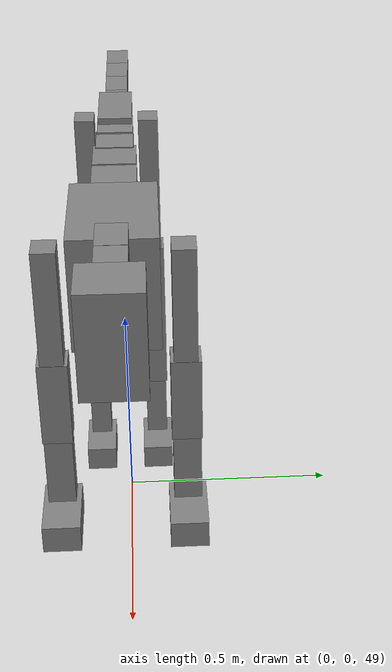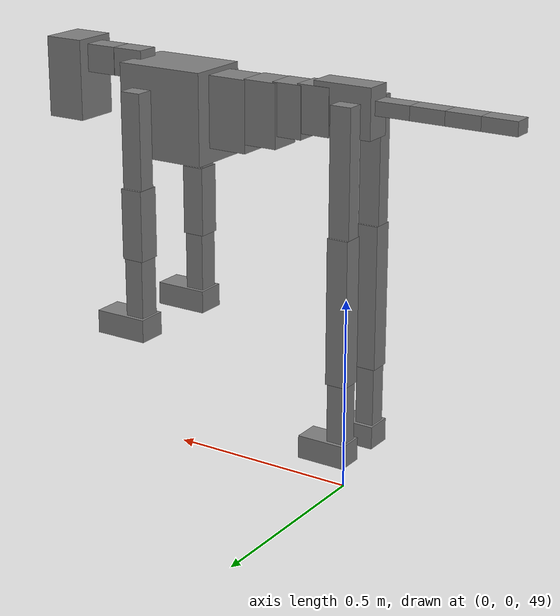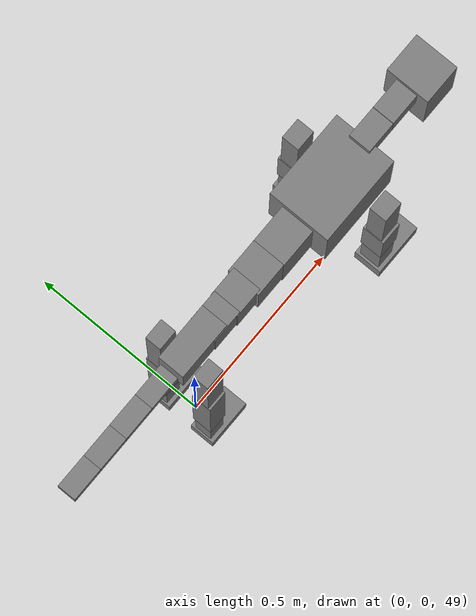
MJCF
<mujoco model="dog">

    <default>
        <joint armature="0.02" stiffness="1" damping="0.2" limited="true"/>
        <geom condim="3" friction="1 0.05 0.05" margin="0.01"/>
        <motor ctrllimited="true" ctrlrange="-1.0 1.0" forcelimited="true" gear="50"/>
    </default>

    <compiler inertiafromgeom="true" angle="radian"/>

    <option timestep="0.016" iterations="50" tolerance="1e-10" solver="Newton" jacobian="dense" cone="pyramidal"/>

    <size nconmax="20000" njmax="60000" nstack="5000000"/>
    <visual>
        <map force="0.1" zfar="30"/>
        <rgba haze="0.15 0.25 0.35 1"/>
        <quality shadowsize="2048"/>
        <global offwidth="800" offheight="800"/>
    </visual>

    <asset>
        <texture type="skybox" builtin="gradient" rgb1="0.3 0.5 0.7" rgb2="0 0 0" width="512" height="512"/>
        <texture name="texplane" type="2d" builtin="checker" rgb1=".2 .3 .4" rgb2=".1 0.15 0.2" width="512" height="512"
                 mark="cross" markrgb=".8 .8 .8"/>
        <texture name="texgeom" type="cube" builtin="flat" mark="cross" width="127" height="1278" rgb1="0.8 0.6 0.4"
                 rgb2="0.8 0.6 0.4" markrgb="1 1 1" random="0.01"/>

        <material name="matplane" reflectance="0.3" texture="texplane" texrepeat="1 1" texuniform="true"/>
        <material name="matgeom" texture="texgeom" texuniform="true" rgba="0.8 0.6 .4 1"/>
    </asset>

    <worldbody>
        <geom name="floor" pos="0 0 0" size="0 0 .25" type="plane" material="matplane" condim="3"/>

        <light directional="false" diffuse=".2 .2 .2" specular="0 0 0" pos="0 0 5" dir="0 0 -1" castshadow="false"/>
        <light mode="targetbodycom" target="torso" directional="false" diffuse=".8 .8 .8" specular="0.3 0.3 0.3"
               pos="0 0 4.0" dir="0 0 -1"/>

        <body name="root" pos="0 0 50">
            <freejoint name="root_1"/>
            <geom type="box" pos="0 0 -0.02" size="0.0774  0.0358  0.063" density="2030"/>

            <body name="spine1" pos="0.054 0 0">
                <joint name="spine1_y" axis="0 1 0" range="0 0.7" limited="true"/>
                <geom type="box" pos="0.02375 0 -0.03" size="0.04375  0.0375  0.05985" density="2030"/>

                <body name="spine2" pos="0.0612 0 0">
                    <joint name="spine2_y" axis="0 1 0" range="-0.15 0.15" limited="true"/>
                    <geom type="box" pos="0.03555  0  -0.04" size="0.04055  0.039  0.06615" density="2030"/>

                    <body name="spine3" pos="0.0730 0 0">
                        <joint name="spine3_y" axis="0 1 0" range="-0.15 0.15" limited="true"/>
                        <geom type="box" pos="0.03555  0  -0.057" size="0.04555  0.0445  0.081" density="2030"/>

                        <body name="spine4" pos="0.0780 0 0">
                            <joint name="spine4_y" axis="0 1 0" range="-0.15 0.15" limited="true"/>
                            <geom type="box" pos="0.05265  0  -0.07" size="0.05265  0.045  0.09135" density="2030"/>

                            <body name="torso" pos="0.1082 0 0">
                                <joint name="torso_y" axis="0 1 0" range="-0.15 0.15" limited="true"/>
                                <geom type="box" pos="0.11925  0  -0.085" size="0.11925  0.085  0.11745"
                                      density="2030"/>

                                <body name="neck1" pos="0.2160  0   0.0180">
                                    <joint name="neck1_y" axis="0 1 0" range="-1.2  -1" limited="true"/>
                                    <geom type="box" pos="0.0423  0  0" size="0.0423  0.03  0.036" density="2325"/>

                                    <body name="neck2" pos="0.0853  0  0">
                                        <joint name="neck2_y" axis="0 1 0" range="0.1  0" limited="true"/>
                                        <geom type="box" pos="0.0423  0  0" size="0.0423  0.03  0.036" density="2325"/>

                                        <body name="head" pos="0.0853  0  0">
                                            <joint name="head_y" axis="0 1 0" range="-0.3  -0.2" limited="true"/>
                                            <geom type="box" pos="0.0531  0  -0.055" size="0.0531  0.06  0.1044"
                                                  density="4030"/>

                                        </body>
                                    </body>
                                </body>

                                <body name="front_shoulder" pos="0.156  0   -0.0480">
                                    <joint name="front_shoulder_y" axis="0 1 0" range="-1 1.5" limited="true"/>
                                    <geom type="box" pos="0 0.13 -0.1096" size="0.0278  0.0238  0.1362" density="1158"/>
                                    <geom type="box" pos="0 -0.13 -0.1096" size="0.0278  0.0238  0.1362"
                                          density="1158"/>

                                    <body name="front_elbow" pos="0  0  -0.2191">
                                        <joint name="front_elbow_y" axis="0 1 0" range="-2 0" limited="true"/>
                                        <geom type="box" pos="0 0.13 -0.0917" size="0.0298  0.0305  0.0917"
                                              density="1081"/>
                                        <geom type="box" pos="0 -0.13 -0.0917" size="0.0298  0.0305  0.0917"
                                              density="1081"/>

                                        <body name="front_wrist" pos="0  0  -0.1834">
                                            <joint name="front_wrist_y" axis="0 1 0" range="-0.2 0" limited="true"/>
                                            <geom type="box" pos="0 0.13 -0.0837" size="0.0256  0.0285  0.0969"
                                                  density="1664"/>
                                            <geom type="box" pos="0 -0.13 -0.0837" size="0.0256  0.0285  0.0969"
                                                  density="1664"/>

                                            <body name="front_finger_end" pos="0  0  -0.1674">
                                                <joint name="front_finger_y" axis="0 1 0" range="-0.4 1"
                                                       limited="true"/>
                                                <geom type="box" pos="0.0390  0.13  -0.0153"
                                                      size="0.0714  0.0390  0.0303" density="1515"/>
                                                <geom type="box" pos="0.0390  -0.13  -0.0153"
                                                      size="0.0714  0.0390  0.0303" density="1515"/>

                                            </body>

                                        </body>
                                    </body>
                                </body>

                            </body>
                        </body>
                    </body>
                </body>
            </body>

            <body name="back_hip" pos="-0.03 0 -0.018">
                <joint name="back_hip_y" axis="0 1 0" range="-1.5 0.3" limited="true"/>
                <geom type="box" pos="0 0.07 -0.1558" size="0.0275  0.0216  0.1786" density="1154"/>
                <geom type="box" pos="0 -0.07 -0.1558" size="0.0275  0.0216  0.1786" density="1154"/>

                <body name="back_knee" pos="0  0  -0.3117">
                    <joint name="back_knee_y" axis="0 1 0" range="0 2.8" limited="true"/>
                    <geom type="box" pos="0 0.07 -0.1705" size="0.0278  0.0274  0.1860" density="1227"/>
                    <geom type="box" pos="0 -0.07 -0.1705" size="0.0278  0.0274  0.1860" density="1227"/>

                    <body name="back_ankle" pos="0  0  -0.3409">
                        <joint name="back_ankle_y" axis="0 1 0" range="-2.2 0" limited="true"/>
                        <geom type="box" pos="0 0.07 -0.0909" size="0.0242  0.0242  0.1022" density="1284"/>
                        <geom type="box" pos="0 -0.07 -0.0909" size="0.0242  0.0242  0.1022" density="1284"/>

                        <body name="back_toe_end" pos="0  0  -0.1818">
                            <joint name="back_toe_y" axis="0 1 0" range="-0.4 1" limited="true"/>
                            <geom type="box" pos="0.0350  0.07  -0.0147" size="0.0641  0.0350  0.0297" density="1515"/>
                            <geom type="box" pos="0.0350  -0.07  -0.0147" size="0.0641  0.0350  0.0297" density="1515"/>

                        </body>
                    </body>
                </body>
            </body>

            <body name="tail1" pos="-0.074 0 -0.006">
                <joint name="tail1_y" axis="0 1 0" range="-0.2 0.2" limited="true"/>
                <geom type="box" pos="-0.0536  0  0" size="0.045  0.025  0.0175" density="1587"/>

                <body name="tail2" pos="-0.09 0 0">
                    <joint name="tail2_y" axis="0 1 0" range="-0.2 0.2" limited="true"/>
                    <geom type="box" pos="-0.0536  0  0" size="0.045  0.025  0.0175" density="1587"/>

                    <body name="tail3" pos="-0.09 0 0">
                        <joint name="tail3_y" axis="0 1 0" range="-0.2 0.2" limited="true"/>
                        <geom type="box" pos="-0.0536  0  0" size="0.045  0.025  0.0175" density="1587"/>

                        <body name="tail4" pos="-0.09 0 0">
                            <joint name="tail4_y" axis="0 1 0" range="-0.2 0.2" limited="true"/>
                            <geom type="box" pos="-0.0536  0  0" size="0.045  0.025  0.0175" density="1587"/>

                        </body>
                    </body>
                </body>
            </body>
        </body>
    </worldbody>

    <actuator>
        <motor joint="spine1_y" forcerange="-150 150     "/>
        <motor joint="spine2_y" forcerange="-150 150     "/>
        <motor joint="spine3_y" forcerange="-150 150     "/>
        <motor joint="spine4_y" forcerange="-150 150     "/>
        <motor joint="torso_y" forcerange="-150 150     "/>
        <motor joint="neck1_y" forcerange="-100 100       "/>
        <motor joint="neck2_y" forcerange="-100 100       "/>
        <motor joint="head_y" forcerange="-150 150       "/>
        <motor joint="front_shoulder_y" forcerange="-105.27 153.09"/>
        <motor joint="front_elbow_y" forcerange="-171.06 150.63"/>
        <motor joint="front_wrist_y" forcerange="-146.45 81.46"/>
        <motor joint="front_finger_y" forcerange="-96.23 71.52"/>
        <motor joint="back_hip_y" forcerange="-215.93 271.95"/>
        <motor joint="back_knee_y" forcerange="-237.30 361.43"/>
        <motor joint="back_angle_y" forcerange="-218.51 68.32"/>
        <motor joint="back_toe_y" forcerange="-71.33 128.39"/>
        <motor joint="tail1_y" forcerange="-50 50     "/>
        <motor joint="tail2_y" forcerange="-50 50     "/>
        <motor joint="tail3_y" forcerange="-50 50     "/>
        <motor joint="tail4_y" forcerange="-50 50     "/>
    </actuator>
</mujoco>
